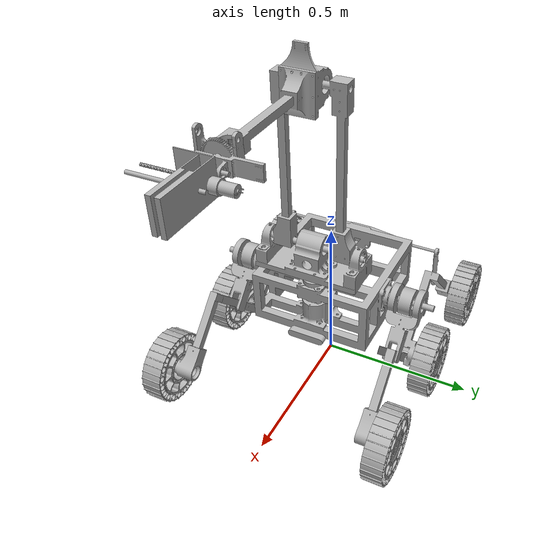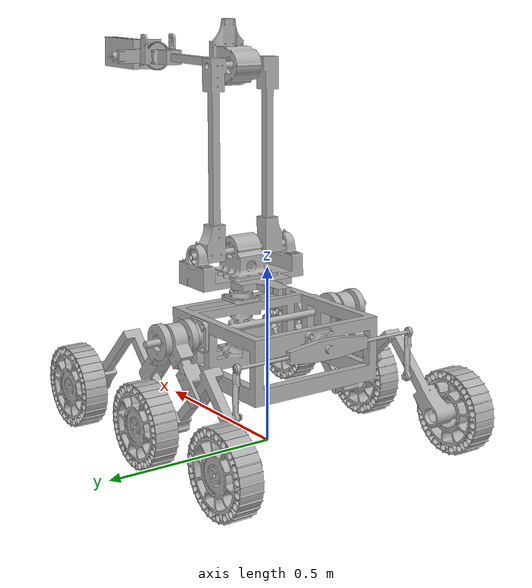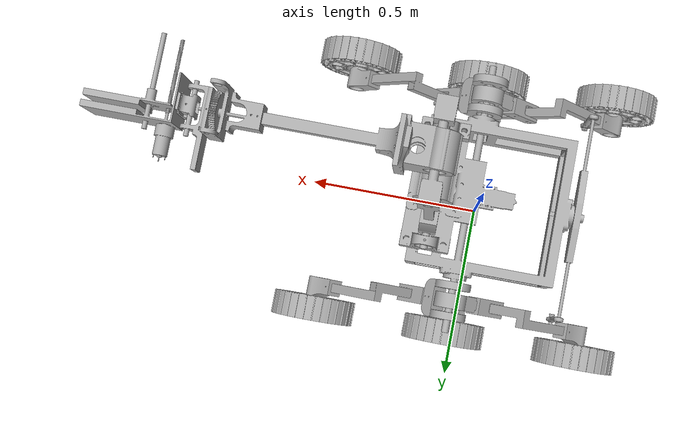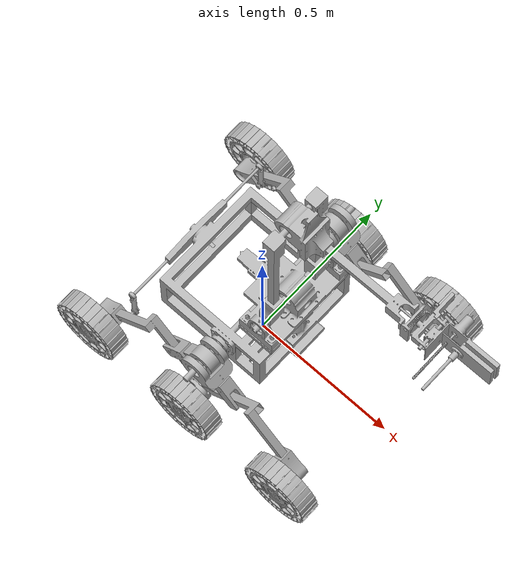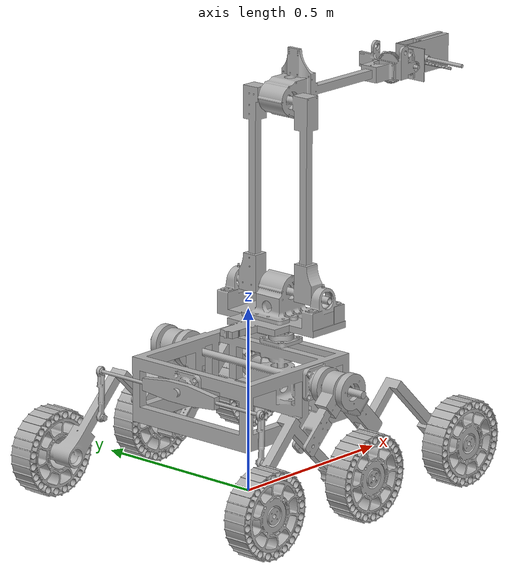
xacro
<?xml version="1.0"?>
<robot xmlns:xacro="http://www.ros.org/wiki/xacro" name="zine_rover">

    <!-- Import zine_rover urdf file -->
    <xacro:include filename="$(find zine_rover_description)/urdf/zine_rover.xacro" />

    <!-- Import control_xacro -->

</robot>

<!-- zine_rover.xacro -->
<robot name="zine_rover" xmlns:xacro="http://www.ros.org/wiki/xacro">

<xacro:include filename="$(find zine_rover_description)/urdf/materials.xacro" />
<xacro:include filename="$(find zine_rover_description)/urdf/zine_rover.trans" />
<xacro:include filename="$(find zine_rover_description)/urdf/zine_rover.gazebo" />
<xacro:include filename="$(find zine_rover_description)/urdf/zine_rover.ros2_control.xacro" />

<link name="base_link">
  <inertial>
    <origin xyz="-0.0038857611897501502 -0.00024786952072830364 0.2950448722837974" rpy="0 0 0"/>
    <mass value="10.0"/>
    <inertia ixx="1.011311" iyy="0.912421" izz="1.612186" ixy="0.000726" iyz="-0.0001" ixz="-0.009863"/>
  </inertial>
  <visual>
    <origin xyz="0 0 0" rpy="0 0 0"/>
    <geometry>
      <mesh filename="file://$(find zine_rover_description)/meshes/base_link.stl" scale="0.001 0.001 0.001"/>
    </geometry>
    <material name="silver"/>
  </visual>
  <collision>
    <origin xyz="0 0 0" rpy="0 0 0"/>
    <geometry>
      <mesh filename="file://$(find zine_rover_description)/meshes/base_link.stl" scale="0.001 0.001 0.001"/>
    </geometry>
  </collision>
</link>

<link name="r1_link_1">
  <inertial>
    <origin xyz="0.0006414189316887309 0.030758799699400874 1.3418884147076149e-05" rpy="0 0 0"/>
    <mass value="1.0"/>
    <inertia ixx="0.028773" iyy="0.052079" izz="0.028665" ixy="-2e-06" iyz="0.0" ixz="4.4e-05"/>
  </inertial>
  <visual>
    <origin xyz="-0.414869 0.407033 -0.118303" rpy="0 0 0"/>
    <geometry>
      <mesh filename="file://$(find zine_rover_description)/meshes/r1_link_1.stl" scale="0.001 0.001 0.001"/>
    </geometry>
    <material name="silver"/>
  </visual>
  <collision>
    <origin xyz="-0.414869 0.407033 -0.118303" rpy="0 0 0"/>
    <geometry>
      <mesh filename="file://$(find zine_rover_description)/meshes/r1_link_1.stl" scale="0.001 0.001 0.001"/>
    </geometry>
  </collision>
</link>

<link name="r2_link_1">
  <inertial>
    <origin xyz="-0.00021266516843905167 0.03075836165097673 -0.0006022299353100613" rpy="0 0 0"/>
    <mass value="1.0"/>
    <inertia ixx="0.028649" iyy="0.052079" izz="0.028789" ixy="8e-06" iyz="1e-06" ixz="5e-06"/>
  </inertial>
  <visual>
    <origin xyz="-0.029994 0.406322 -0.118471" rpy="0 0 0"/>
    <geometry>
      <mesh filename="file://$(find zine_rover_description)/meshes/r2_link_1.stl" scale="0.001 0.001 0.001"/>
    </geometry>
    <material name="silver"/>
  </visual>
  <collision>
    <origin xyz="-0.029994 0.406322 -0.118471" rpy="0 0 0"/>
    <geometry>
      <mesh filename="file://$(find zine_rover_description)/meshes/r2_link_1.stl" scale="0.001 0.001 0.001"/>
    </geometry>
  </collision>
</link>

<link name="r3_link_1">
  <inertial>
    <origin xyz="-0.0006185092064089348 0.030758925919536828 0.00017170579187054946" rpy="0 0 0"/>
    <mass value="1.0"/>
    <inertia ixx="0.028789" iyy="0.052079" izz="0.028649" ixy="2e-06" iyz="-1e-06" ixz="7e-06"/>
  </inertial>
  <visual>
    <origin xyz="0.354572 0.407444 -0.115238" rpy="0 0 0"/>
    <geometry>
      <mesh filename="file://$(find zine_rover_description)/meshes/r3_link_1.stl" scale="0.001 0.001 0.001"/>
    </geometry>
    <material name="silver"/>
  </visual>
  <collision>
    <origin xyz="0.354572 0.407444 -0.115238" rpy="0 0 0"/>
    <geometry>
      <mesh filename="file://$(find zine_rover_description)/meshes/r3_link_1.stl" scale="0.001 0.001 0.001"/>
    </geometry>
  </collision>
</link>

<link name="left_back_link_1">
  <inertial>
    <origin xyz="-0.04101897192135453 -0.08541263360069007 -0.03983040167490243" rpy="0 0 0"/>
    <mass value="0.5"/>
    <inertia ixx="0.006983" iyy="0.013288" izz="0.007314" ixy="7.7e-05" iyz="7.5e-05" ixz="-0.005479"/>
  </inertial>
  <visual>
    <origin xyz="-0.030181 -0.369196 -0.335368" rpy="0 0 0"/>
    <geometry>
      <mesh filename="file://$(find zine_rover_description)/meshes/left_back_link_1.stl" scale="0.001 0.001 0.001"/>
    </geometry>
    <material name="silver"/>
  </visual>
  <collision>
    <origin xyz="-0.030181 -0.369196 -0.335368" rpy="0 0 0"/>
    <geometry>
      <mesh filename="file://$(find zine_rover_description)/meshes/left_back_link_1.stl" scale="0.001 0.001 0.001"/>
    </geometry>
  </collision>
</link>

<link name="l3_link_1">
  <inertial>
    <origin xyz="-0.0005600223579425023 -0.03075840738942104 0.00031280724704187135" rpy="0 0 0"/>
    <mass value="1.0"/>
    <inertia ixx="0.028784" iyy="0.052079" izz="0.028654" ixy="-2e-06" iyz="1e-06" ixz="-2.6e-05"/>
  </inertial>
  <visual>
    <origin xyz="0.354011 -0.406164 -0.115072" rpy="0 0 0"/>
    <geometry>
      <mesh filename="file://$(find zine_rover_description)/meshes/l3_link_1.stl" scale="0.001 0.001 0.001"/>
    </geometry>
    <material name="silver"/>
  </visual>
  <collision>
    <origin xyz="0.354011 -0.406164 -0.115072" rpy="0 0 0"/>
    <geometry>
      <mesh filename="file://$(find zine_rover_description)/meshes/l3_link_1.stl" scale="0.001 0.001 0.001"/>
    </geometry>
  </collision>
</link>

<link name="l2_link_1">
  <inertial>
    <origin xyz="-0.0001583772114139119 -0.03075882547538339 -0.0006195546615022363" rpy="0 0 0"/>
    <mass value="1.0"/>
    <inertia ixx="0.028649" iyy="0.052079" izz="0.028789" ixy="-8e-06" iyz="-2e-06" ixz="-8e-06"/>
  </inertial>
  <visual>
    <origin xyz="-0.030562 -0.405043 -0.117281" rpy="0 0 0"/>
    <geometry>
      <mesh filename="file://$(find zine_rover_description)/meshes/l2_link_1.stl" scale="0.001 0.001 0.001"/>
    </geometry>
    <material name="silver"/>
  </visual>
  <collision>
    <origin xyz="-0.030562 -0.405043 -0.117281" rpy="0 0 0"/>
    <geometry>
      <mesh filename="file://$(find zine_rover_description)/meshes/l2_link_1.stl" scale="0.001 0.001 0.001"/>
    </geometry>
  </collision>
</link>

<link name="l1_link_1">
  <inertial>
    <origin xyz="0.00019781416745967562 -0.030758307389101902 0.0006106918381962728" rpy="0 0 0"/>
    <mass value="1.0"/>
    <inertia ixx="0.028649" iyy="0.052079" izz="0.028789" ixy="1e-06" iyz="2e-06" ixz="-1e-06"/>
  </inertial>
  <visual>
    <origin xyz="-0.415171 -0.406101 -0.119878" rpy="0 0 0"/>
    <geometry>
      <mesh filename="file://$(find zine_rover_description)/meshes/l1_link_1.stl" scale="0.001 0.001 0.001"/>
    </geometry>
    <material name="silver"/>
  </visual>
  <collision>
    <origin xyz="-0.415171 -0.406101 -0.119878" rpy="0 0 0"/>
    <geometry>
      <mesh filename="file://$(find zine_rover_description)/meshes/l1_link_1.stl" scale="0.001 0.001 0.001"/>
    </geometry>
  </collision>
</link>

<link name="limb2_1">
  <inertial>
    <origin xyz="-0.0009313149936534676 0.15764720202589638 0.24654532876751079" rpy="0 0 0"/>
    <mass value="1.0"/>
    <inertia ixx="0.475806" iyy="0.397211" izz="0.080891" ixy="-2e-06" iyz="0.002402" ixz="-0.000211"/>
  </inertial>
  <visual>
    <origin xyz="-0.125123 0.157314 -0.525964" rpy="0 0 0"/>
    <geometry>
      <mesh filename="file://$(find zine_rover_description)/meshes/limb2_1.stl" scale="0.001 0.001 0.001"/>
    </geometry>
    <material name="silver"/>
  </visual>
  <collision>
    <origin xyz="-0.125123 0.157314 -0.525964" rpy="0 0 0"/>
    <geometry>
      <mesh filename="file://$(find zine_rover_description)/meshes/limb2_1.stl" scale="0.001 0.001 0.001"/>
    </geometry>
  </collision>
</link>

<link name="limb3_1">
  <inertial>
    <origin xyz="0.09312766839979052 -0.014585693873940037 0.0035642598524185942" rpy="0 0 0"/>
    <mass value="1.14"/>
    <inertia ixx="0.011716" iyy="0.090775" izz="0.087272" ixy="-5.6e-05" iyz="-4.6e-05" ixz="0.000558"/>
  </inertial>
  <visual>
    <origin xyz="-0.124287 -0.015263 -1.040309" rpy="0 0 0"/>
    <geometry>
      <mesh filename="file://$(find zine_rover_description)/meshes/limb3_1.stl" scale="0.001 0.001 0.001"/>
    </geometry>
    <material name="silver"/>
  </visual>
  <collision>
    <origin xyz="-0.124287 -0.015263 -1.040309" rpy="0 0 0"/>
    <geometry>
      <mesh filename="file://$(find zine_rover_description)/meshes/limb3_1.stl" scale="0.001 0.001 0.001"/>
    </geometry>
  </collision>
</link>

<link name="limb4_1">
  <inertial>
    <origin xyz="-0.03237236969252921 0.014485063687909881 -0.003759164528091219" rpy="0 0 0"/>
    <mass value="0.52"/>
    <inertia ixx="0.003369" iyy="0.001" izz="0.003487" ixy="-0.000232" iyz="4e-05" ixz="6.6e-05"/>
  </inertial>
  <visual>
    <origin xyz="-0.609567 -0.004405 -1.047976" rpy="0 0 0"/>
    <geometry>
      <mesh filename="file://$(find zine_rover_description)/meshes/limb4_1.stl" scale="0.001 0.001 0.001"/>
    </geometry>
    <material name="silver"/>
  </visual>
  <collision>
    <origin xyz="-0.609567 -0.004405 -1.047976" rpy="0 0 0"/>
    <geometry>
      <mesh filename="file://$(find zine_rover_description)/meshes/limb4_1.stl" scale="0.001 0.001 0.001"/>
    </geometry>
  </collision>
</link>

<link name="limb5_1">
  <inertial>
    <origin xyz="0.09198943112043745 0.025925778982402593 -0.0051279907227419486" rpy="0 0 0"/>
    <mass value="0.5"/>
    <inertia ixx="0.000546" iyy="0.001224" izz="0.001484" ixy="-0.000139" iyz="9e-06" ixz="-3.3e-05"/>
  </inertial>
  <visual>
    <origin xyz="-0.613532 -0.006119 -1.047254" rpy="0 0 0"/>
    <geometry>
      <mesh filename="file://$(find zine_rover_description)/meshes/limb5_1.stl" scale="0.001 0.001 0.001"/>
    </geometry>
    <material name="silver"/>
  </visual>
  <collision>
    <origin xyz="-0.613532 -0.006119 -1.047254" rpy="0 0 0"/>
    <geometry>
      <mesh filename="file://$(find zine_rover_description)/meshes/limb5_1.stl" scale="0.001 0.001 0.001"/>
    </geometry>
  </collision>
</link>

<link name="limb6_1">
  <inertial>
    <origin xyz="0.05423722048055246 0.1486038100062132 -0.004461452158523782" rpy="0 0 0"/>
    <mass value="0.2"/>
    <inertia ixx="0.0008" iyy="0.002757" izz="0.002011" ixy="-7.7e-05" iyz="7e-06" ixz="-1.2e-05"/>
  </inertial>
  <visual>
    <origin xyz="-0.696447 0.131588 -1.048382" rpy="0 0 0"/>
    <geometry>
      <mesh filename="file://$(find zine_rover_description)/meshes/limb6_1.stl" scale="0.001 0.001 0.001"/>
    </geometry>
    <material name="silver"/>
  </visual>
  <collision>
    <origin xyz="-0.696447 0.131588 -1.048382" rpy="0 0 0"/>
    <geometry>
      <mesh filename="file://$(find zine_rover_description)/meshes/limb6_1.stl" scale="0.001 0.001 0.001"/>
    </geometry>
  </collision>
</link>

<link name="diff_bar_1">
  <inertial>
    <origin xyz="-0.008424732499142051 -0.0023382285573709713 -0.0024749991835331664" rpy="0 0 0"/>
    <mass value="1.1"/>
    <inertia ixx="0.015332" iyy="0.00048" izz="0.015193" ixy="-6e-06" iyz="1.1e-05" ixz="-7e-06"/>
  </inertial>
  <visual>
    <origin xyz="0.2551 4.5e-05 -0.335686" rpy="0 0 0"/>
    <geometry>
      <mesh filename="file://$(find zine_rover_description)/meshes/diff_bar_1.stl" scale="0.001 0.001 0.001"/>
    </geometry>
    <material name="silver"/>
  </visual>
  <collision>
    <origin xyz="0.2551 4.5e-05 -0.335686" rpy="0 0 0"/>
    <geometry>
      <mesh filename="file://$(find zine_rover_description)/meshes/diff_bar_1.stl" scale="0.001 0.001 0.001"/>
    </geometry>
  </collision>
</link>

<link name="r_ball_bar_1">
  <inertial>
    <origin xyz="-3.8041425093338077e-07 0.006999843409000339 -5.8550370919396855e-06" rpy="0 0 0"/>
    <mass value="0.017010723360162443"/>
    <inertia ixx="1e-06" iyy="1e-06" izz="1e-06" ixy="-0.0" iyz="-0.0" ixz="0.0"/>
  </inertial>
  <visual>
    <origin xyz="0.265785 0.28801 -0.333291" rpy="0 0 0"/>
    <geometry>
      <mesh filename="file://$(find zine_rover_description)/meshes/r_ball_bar_1.stl" scale="0.001 0.001 0.001"/>
    </geometry>
    <material name="silver"/>
  </visual>
  <collision>
    <origin xyz="0.265785 0.28801 -0.333291" rpy="0 0 0"/>
    <geometry>
      <mesh filename="file://$(find zine_rover_description)/meshes/r_ball_bar_1.stl" scale="0.001 0.001 0.001"/>
    </geometry>
  </collision>
</link>

<link name="l_ball_bar_1">
  <inertial>
    <origin xyz="-4.893178806586462e-08 -0.007000347061398793 5.702947977637152e-06" rpy="0 0 0"/>
    <mass value="0.017010723360162464"/>
    <inertia ixx="1e-06" iyy="1e-06" izz="1e-06" ixy="-0.0" iyz="-0.0" ixz="0.0"/>
  </inertial>
  <visual>
    <origin xyz="0.265811 -0.286654 -0.332818" rpy="0 0 0"/>
    <geometry>
      <mesh filename="file://$(find zine_rover_description)/meshes/l_ball_bar_1.stl" scale="0.001 0.001 0.001"/>
    </geometry>
    <material name="silver"/>
  </visual>
  <collision>
    <origin xyz="0.265811 -0.286654 -0.332818" rpy="0 0 0"/>
    <geometry>
      <mesh filename="file://$(find zine_rover_description)/meshes/l_ball_bar_1.stl" scale="0.001 0.001 0.001"/>
    </geometry>
  </collision>
</link>

<link name="l_diff_hand_1">
  <inertial>
    <origin xyz="0.00282756213214691 0.001357765747342421 -0.05772275325720411" rpy="0 0 0"/>
    <mass value="0.16009834530837108"/>
    <inertia ixx="0.000253" iyy="0.000256" izz="8e-06" ixy="-0.0" iyz="6e-06" ixz="5e-06"/>
  </inertial>
  <visual>
    <origin xyz="0.265811 -0.279654 -0.332824" rpy="0 0 0"/>
    <geometry>
      <mesh filename="file://$(find zine_rover_description)/meshes/l_diff_hand_1.stl" scale="0.001 0.001 0.001"/>
    </geometry>
    <material name="silver"/>
  </visual>
  <collision>
    <origin xyz="0.265811 -0.279654 -0.332824" rpy="0 0 0"/>
    <geometry>
      <mesh filename="file://$(find zine_rover_description)/meshes/l_diff_hand_1.stl" scale="0.001 0.001 0.001"/>
    </geometry>
  </collision>
</link>

<link name="r_diff_hand_1">
  <inertial>
    <origin xyz="0.0024539326093456215 1.7808395375018549e-06 -0.057756889781488685" rpy="0 0 0"/>
    <mass value="0.16009838500140464"/>
    <inertia ixx="0.000253" iyy="0.000256" izz="8e-06" ixy="-0.0" iyz="0.0" ixz="3e-06"/>
  </inertial>
  <visual>
    <origin xyz="0.265785 0.28101 -0.333285" rpy="0 0 0"/>
    <geometry>
      <mesh filename="file://$(find zine_rover_description)/meshes/r_diff_hand_1.stl" scale="0.001 0.001 0.001"/>
    </geometry>
    <material name="silver"/>
  </visual>
  <collision>
    <origin xyz="0.265785 0.28101 -0.333285" rpy="0 0 0"/>
    <geometry>
      <mesh filename="file://$(find zine_rover_description)/meshes/r_diff_hand_1.stl" scale="0.001 0.001 0.001"/>
    </geometry>
  </collision>
</link>

<link name="l_ball_leg_1">
  <inertial>
    <origin xyz="-2.423484034008716e-07 4.322868535355795e-07 2.809097552070039e-07" rpy="0 0 0"/>
    <mass value="0.017010723360162443"/>
    <inertia ixx="1e-06" iyy="1e-06" izz="1e-06" ixy="-0.0" iyz="-0.0" ixz="0.0"/>
  </inertial>
  <visual>
    <origin xyz="0.262757 -0.282663 -0.204979" rpy="0 0 0"/>
    <geometry>
      <mesh filename="file://$(find zine_rover_description)/meshes/l_ball_leg_1.stl" scale="0.001 0.001 0.001"/>
    </geometry>
    <material name="silver"/>
  </visual>
  <collision>
    <origin xyz="0.262757 -0.282663 -0.204979" rpy="0 0 0"/>
    <geometry>
      <mesh filename="file://$(find zine_rover_description)/meshes/l_ball_leg_1.stl" scale="0.001 0.001 0.001"/>
    </geometry>
  </collision>
</link>

<link name="r_ball_leg_1">
  <inertial>
    <origin xyz="-3.255745827934753e-07 1.935362867744317e-07 2.295955819631157e-07" rpy="0 0 0"/>
    <mass value="0.017010723360162464"/>
    <inertia ixx="1e-06" iyy="1e-06" izz="1e-06" ixy="0.0" iyz="0.0" ixz="0.0"/>
  </inertial>
  <visual>
    <origin xyz="0.263558 0.281006 -0.205388" rpy="0 0 0"/>
    <geometry>
      <mesh filename="file://$(find zine_rover_description)/meshes/r_ball_leg_1.stl" scale="0.001 0.001 0.001"/>
    </geometry>
    <material name="silver"/>
  </visual>
  <collision>
    <origin xyz="0.263558 0.281006 -0.205388" rpy="0 0 0"/>
    <geometry>
      <mesh filename="file://$(find zine_rover_description)/meshes/r_ball_leg_1.stl" scale="0.001 0.001 0.001"/>
    </geometry>
  </collision>
</link>

<link name="right_back_link_1">
  <inertial>
    <origin xyz="-0.04128928098544271 0.08541503378206888 -0.03955012324086804" rpy="0 0 0"/>
    <mass value="3.0"/>
    <inertia ixx="0.006908" iyy="0.013288" izz="0.007389" ixy="-7.8e-05" iyz="-7.4e-05" ixz="-0.005477"/>
  </inertial>
  <visual>
    <origin xyz="-0.030181 0.370084 -0.335368" rpy="0 0 0"/>
    <geometry>
      <mesh filename="file://$(find zine_rover_description)/meshes/right_back_link_1.stl" scale="0.001 0.001 0.001"/>
    </geometry>
    <material name="silver"/>
  </visual>
  <collision>
    <origin xyz="-0.030181 0.370084 -0.335368" rpy="0 0 0"/>
    <geometry>
      <mesh filename="file://$(find zine_rover_description)/meshes/right_back_link_1.stl" scale="0.001 0.001 0.001"/>
    </geometry>
  </collision>
</link>

<link name="right_front_link_1">
  <inertial>
    <origin xyz="0.036348723198041874 0.08574580577310559 -0.03808847939829246" rpy="0 0 0"/>
    <mass value="0.5"/>
    <inertia ixx="0.012482" iyy="0.015651" izz="0.011906" ixy="5.9e-05" iyz="-6.2e-05" ixz="0.006108"/>
  </inertial>
  <visual>
    <origin xyz="-0.030181 0.370084 -0.335368" rpy="0 0 0"/>
    <geometry>
      <mesh filename="file://$(find zine_rover_description)/meshes/right_front_link_1.stl" scale="0.001 0.001 0.001"/>
    </geometry>
    <material name="silver"/>
  </visual>
  <collision>
    <origin xyz="-0.030181 0.370084 -0.335368" rpy="0 0 0"/>
    <geometry>
      <mesh filename="file://$(find zine_rover_description)/meshes/right_front_link_1.stl" scale="0.001 0.001 0.001"/>
    </geometry>
  </collision>
</link>

<link name="left_front_link_1">
  <inertial>
    <origin xyz="0.03624056599335032 -0.08574592403164472 -0.038191405202450346" rpy="0 0 0"/>
    <mass value="0.5"/>
    <inertia ixx="0.012516" iyy="0.015651" izz="0.011871" ixy="-5.9e-05" iyz="6.2e-05" ixz="0.006106"/>
  </inertial>
  <visual>
    <origin xyz="-0.030181 -0.369196 -0.335368" rpy="0 0 0"/>
    <geometry>
      <mesh filename="file://$(find zine_rover_description)/meshes/left_front_link_1.stl" scale="0.001 0.001 0.001"/>
    </geometry>
    <material name="silver"/>
  </visual>
  <collision>
    <origin xyz="-0.030181 -0.369196 -0.335368" rpy="0 0 0"/>
    <geometry>
      <mesh filename="file://$(find zine_rover_description)/meshes/left_front_link_1.stl" scale="0.001 0.001 0.001"/>
    </geometry>
  </collision>
</link>

<link name="right_leg2_link_1">
  <inertial>
    <origin xyz="-0.10477256996150404 -0.020099344589046608 -0.05865491905650194" rpy="0 0 0"/>
    <mass value="3.0"/>
    <inertia ixx="0.017082" iyy="0.106334" izz="0.096519" ixy="-0.00164" iyz="-0.001772" ixz="0.004308"/>
  </inertial>
  <visual>
    <origin xyz="0.095844 0.298444 -0.214641" rpy="0 0 0"/>
    <geometry>
      <mesh filename="file://$(find zine_rover_description)/meshes/right_leg2_link_1.stl" scale="0.001 0.001 0.001"/>
    </geometry>
    <material name="silver"/>
  </visual>
  <collision>
    <origin xyz="0.095844 0.298444 -0.214641" rpy="0 0 0"/>
    <geometry>
      <mesh filename="file://$(find zine_rover_description)/meshes/right_leg2_link_1.stl" scale="0.001 0.001 0.001"/>
    </geometry>
  </collision>
</link>

<link name="right_leg1_link_1">
  <inertial>
    <origin xyz="0.16217649706871057 -0.015281462818579283 -0.043322366966446285" rpy="0 0 0"/>
    <mass value="3.0"/>
    <inertia ixx="0.014033" iyy="0.060191" izz="0.050972" ixy="0.006183" iyz="-0.001004" ixz="0.003663"/>
  </inertial>
  <visual>
    <origin xyz="-0.149094 0.29799 -0.210689" rpy="0 0 0"/>
    <geometry>
      <mesh filename="file://$(find zine_rover_description)/meshes/right_leg1_link_1.stl" scale="0.001 0.001 0.001"/>
    </geometry>
    <material name="silver"/>
  </visual>
  <collision>
    <origin xyz="-0.149094 0.29799 -0.210689" rpy="0 0 0"/>
    <geometry>
      <mesh filename="file://$(find zine_rover_description)/meshes/right_leg1_link_1.stl" scale="0.001 0.001 0.001"/>
    </geometry>
  </collision>
</link>

<link name="left_leg1_link_1">
  <inertial>
    <origin xyz="0.16248836174838263 0.04268507341206884 -0.04215896089783708" rpy="0 0 0"/>
    <mass value="3.0"/>
    <inertia ixx="0.013984" iyy="0.060193" izz="0.051025" ixy="-0.006191" iyz="0.00096" ixz="0.003398"/>
  </inertial>
  <visual>
    <origin xyz="-0.14874 -0.269701 -0.210353" rpy="0 0 0"/>
    <geometry>
      <mesh filename="file://$(find zine_rover_description)/meshes/left_leg1_link_1.stl" scale="0.001 0.001 0.001"/>
    </geometry>
    <material name="silver"/>
  </visual>
  <collision>
    <origin xyz="-0.14874 -0.269701 -0.210353" rpy="0 0 0"/>
    <geometry>
      <mesh filename="file://$(find zine_rover_description)/meshes/left_leg1_link_1.stl" scale="0.001 0.001 0.001"/>
    </geometry>
  </collision>
</link>

<link name="left_leg2_link_1">
  <inertial>
    <origin xyz="-0.10492310393726255 0.047098178739375884 -0.05837546321874501" rpy="0 0 0"/>
    <mass value="3.0"/>
    <inertia ixx="0.017105" iyy="0.106331" izz="0.096492" ixy="0.001643" iyz="0.001768" ixz="0.00452"/>
  </inertial>
  <visual>
    <origin xyz="0.095019 -0.270164 -0.213786" rpy="0 0 0"/>
    <geometry>
      <mesh filename="file://$(find zine_rover_description)/meshes/left_leg2_link_1.stl" scale="0.001 0.001 0.001"/>
    </geometry>
    <material name="silver"/>
  </visual>
  <collision>
    <origin xyz="0.095019 -0.270164 -0.213786" rpy="0 0 0"/>
    <geometry>
      <mesh filename="file://$(find zine_rover_description)/meshes/left_leg2_link_1.stl" scale="0.001 0.001 0.001"/>
    </geometry>
  </collision>
</link>

<link name="limb1_1">
  <inertial>
    <origin xyz="-0.016370903333090006 -0.0008645449700613833 0.033727080142810006" rpy="0 0 0"/>
    <mass value="1.0"/>
    <inertia ixx="0.161528" iyy="0.058708" izz="0.190376" ixy="6.8e-05" iyz="-0.000181" ixz="-0.004124"/>
  </inertial>
  <visual>
    <origin xyz="-0.127661 -0.0 -0.433766" rpy="0 0 0"/>
    <geometry>
      <mesh filename="file://$(find zine_rover_description)/meshes/limb1_1.stl" scale="0.001 0.001 0.001"/>
    </geometry>
    <material name="silver"/>
  </visual>
  <collision>
    <origin xyz="-0.127661 -0.0 -0.433766" rpy="0 0 0"/>
    <geometry>
      <mesh filename="file://$(find zine_rover_description)/meshes/limb1_1.stl" scale="0.001 0.001 0.001"/>
    </geometry>
  </collision>
</link>

<link name="camera_bottom_screw_frame">
  <inertial>
    <origin xyz="0.012499766770417559 1.707797670641442e-12 -6.742476155841004e-06" rpy="0 0 0"/>
    <mass value="0.5881456227875071"/>
    <inertia ixx="0.000738" iyy="6e-05" izz="0.000739" ixy="-0.0" iyz="-0.0" ixz="0.0"/>
  </inertial>
  <visual>
    <origin xyz="-0.170543 -0.0 -0.20437" rpy="0 0 0"/>
    <geometry>
      <mesh filename="file://$(find zine_rover_description)/meshes/camera_link_1.stl" scale="0.001 0.001 0.001"/>
    </geometry>
    <material name="silver"/>
  </visual>
  <collision>
    <origin xyz="-0.170543 -0.0 -0.20437" rpy="0 0 0"/>
    <geometry>
      <mesh filename="file://$(find zine_rover_description)/meshes/camera_link_1.stl" scale="0.001 0.001 0.001"/>
    </geometry>
  </collision>
</link>

<link name="camera_link"></link>

<link name="camera_depth_frame"></link>

<link name="camera_depth_optical_frame"></link>

<link name="camera_color_frame"></link>

<link name="camera_color_optical_frame"></link>

<link name="camera_left_ir_frame"></link>

<link name="camera_left_ir_optical_frame"></link>

<link name="camera_right_ir_frame"></link>

<link name="camera_right_ir_optical_frame"></link>

<joint name="r_wheel1_j" type="continuous">
  <origin xyz="0.265775 -0.109043 -0.092386" rpy="0 0 0"/>
  <parent link="right_leg1_link_1"/>
  <child link="r1_link_1"/>
  <axis xyz="0.0 1.0 0.0"/>
</joint>

<joint name="r_wheel2_j" type="continuous">
  <origin xyz="0.125838 -0.107878 -0.09617" rpy="0 0 0"/>
  <parent link="right_leg2_link_1"/>
  <child link="r2_link_1"/>
  <axis xyz="0.000315 1.0 -1.2e-05"/>
</joint>

<joint name="r_wheel3_j" type="continuous">
  <origin xyz="-0.258728 -0.109 -0.099403" rpy="0 0 0"/>
  <parent link="right_leg2_link_1"/>
  <child link="r3_link_1"/>
  <axis xyz="0.0 1.0 -0.0"/>
</joint>

<joint name="l_back_j" type="continuous">
  <origin xyz="0.030181 0.369196 0.335368" rpy="0 0 0"/>
  <parent link="base_link"/>
  <child link="left_back_link_1"/>
  <axis xyz="0.0 1.0 -0.0"/>
</joint>

<joint name="l_wheel3_j" type="continuous">
  <origin xyz="-0.258992 0.136 -0.098714" rpy="0 0 0"/>
  <parent link="left_leg2_link_1"/>
  <child link="l3_link_1"/>
  <axis xyz="-0.0 1.0 0.0"/>
</joint>

<joint name="l_wheel2_j" type="continuous">
  <origin xyz="0.125581 0.134879 -0.096505" rpy="0 0 0"/>
  <parent link="left_leg2_link_1"/>
  <child link="l2_link_1"/>
  <axis xyz="-0.000315 1.0 1.3e-05"/>
</joint>

<joint name="l_wheel1_j" type="continuous">
  <origin xyz="0.266431 0.1364 -0.090475" rpy="0 0 0"/>
  <parent link="left_leg1_link_1"/>
  <child link="l1_link_1"/>
  <axis xyz="-0.0 1.0 -0.0"/>
</joint>

<joint name="camera_j" type="fixed">
  <origin xyz="0.170543 0.0 0.20437" rpy="0 0 0"/>
  <parent link="base_link"/>
  <child link="camera_bottom_screw_frame"/>
</joint>

<joint name="camera_link_joint" type="fixed">
  <parent link="camera_bottom_screw_frame" />
  <child link="camera_link" />
  <origin xyz="0 0.0175 0.0125 " rpy="0 0 0" />
</joint>

<joint name="camera_depth_joint" type="fixed">
  <parent link="camera_link" />
  <child link="camera_depth_frame" />
  <origin xyz="0 0 0" rpy="0 0 0" />
</joint>

<joint name="camera_depth_optical_joint" type="fixed">
  <parent link="camera_depth_frame" />
  <child link="camera_depth_optical_frame" />
  <origin xyz="0 0 0 " rpy="-1.57 0 -1.57" />
</joint>

<joint name="camera_color_joint" type="fixed">
  <parent link="camera_depth_frame" />
  <child link="camera_color_frame" />
  <origin xyz="0 0 0" rpy="0 0 0" />
</joint>

<joint name="camera_color_optical_joint" type="fixed">
  <parent link="camera_color_frame" />
  <child link="camera_color_optical_frame" />
  <origin xyz="0 0 0 " rpy="-1.57 0 -1.57" />
</joint>

<joint name="camera_left_ir_joint" type="fixed">
  <parent link="camera_depth_frame" />
  <child link="camera_left_ir_frame" />
  <origin xyz="0 0 0 " rpy="0 0 0 " />
</joint>

<joint name="camera_left_ir_optical_joint" type="fixed">
  <parent link="camera_left_ir_frame" />
  <child link="camera_left_ir_optical_frame" />
  <origin xyz="0 0 0 " rpy="-1.57 0 -1.57" />
</joint>

<joint name="camera_right_ir_joint" type="fixed">
  <parent link="camera_depth_frame" />
  <child link="camera_right_ir_frame" />
  <origin xyz="0 -0.050 0 " rpy="0 0 0" />
</joint>

<joint name="camera_right_ir_optical_joint" type="fixed">
  <parent link="camera_right_ir_frame" />
  <child link="camera_right_ir_optical_frame" />
  <origin xyz="0 0 0 " rpy="-1.57 0 -1.57" />
</joint>

<joint name="joint1" type="revolute">
  <origin xyz="-0.002538 -0.157314 0.092198" rpy="0 0 0"/>
  <parent link="limb1_1"/>
  <child link="limb2_1"/>
  <axis xyz="0.0 -1.0 0.0"/>
  <limit upper="1.57" lower="-1.57" effort="100" velocity="100"/>
</joint>

<joint name="joint2" type="revolute">
  <origin xyz="-0.000836 0.172577 0.514345" rpy="0 0 0"/>
  <parent link="limb2_1"/>
  <child link="limb3_1"/>
  <axis xyz="0.0 -1.0 0.0"/>
  <limit upper="1.570796" lower="-1.570796" effort="100" velocity="100"/>
</joint>

<joint name="joint3" type="revolute">
  <origin xyz="0.48528 -0.010858 0.007667" rpy="0 0 0"/>
  <parent link="limb3_1"/>
  <child link="limb4_1"/>
  <axis xyz="0.999954 0.0 0.009613"/>
  <limit upper="1.570796" lower="-1.570796" effort="100" velocity="100"/>
</joint>

<joint name="joint4" type="revolute">
  <origin xyz="0.003965 0.001714 -0.000722" rpy="0 0 0"/>
  <parent link="limb4_1"/>
  <child link="limb5_1"/>
  <axis xyz="-9.7e-05 0.999949 0.010126"/>
  <limit upper="1.570796" lower="-1.570796" effort="100" velocity="100"/>
</joint>

<joint name="joint5" type="prismatic">
  <origin xyz="0.082915 -0.137707 0.001128" rpy="0 0 0"/>
  <parent link="limb5_1"/>
  <child link="limb6_1"/>
  <axis xyz="9.7e-05 -0.999949 -0.010126"/>
  <limit upper="0.1" lower="0.0" effort="100" velocity="100"/>
</joint>

<joint name="diff_bar_j" type="revolute">
  <origin xyz="-0.2551 -4.5e-05 0.335686" rpy="0 0 0"/>
  <parent link="base_link"/>
  <child link="diff_bar_1"/>
  <axis xyz="-1.0 0.0 0.0"/>
  <limit upper="1.0" lower="-1.0" effort="10" velocity="100"/>
</joint>

<joint name="r_bar_ball_j" type="continuous">
  <origin xyz="-0.010685 -0.287965 -0.002395" rpy="0 0 0"/>
  <parent link="diff_bar_1"/>
  <child link="r_ball_bar_1"/>
  <axis xyz="4.5e-05 -1.0 0.000823"/>
</joint>

<joint name="l_bar_ball_j" type="continuous">
  <origin xyz="-0.010711 0.286699 -0.002868" rpy="0 0 0"/>
  <parent link="diff_bar_1"/>
  <child link="l_ball_bar_1"/>
  <axis xyz="-4.5e-05 1.0 -0.000823"/>
</joint>

<joint name="l_ball_hand_j" type="continuous">
  <origin xyz="0.0 -0.007 6e-06" rpy="0 0 0"/>
  <parent link="l_ball_bar_1"/>
  <child link="l_diff_hand_1"/>
  <axis xyz="0.999698 1.2e-05 -0.024563"/>
</joint>

<joint name="r_ball_hand_j" type="continuous">
  <origin xyz="0.0 0.007 -6e-06" rpy="0 0 0"/>
  <parent link="r_ball_bar_1"/>
  <child link="r_diff_hand_1"/>
  <axis xyz="0.999519 -1.2e-05 -0.031019"/>
</joint>

<joint name="l_hand_ball_j" type="continuous">
  <origin xyz="0.003054 0.003009 -0.127845" rpy="0 0 0"/>
  <parent link="l_diff_hand_1"/>
  <child link="l_ball_leg_1"/>
  <axis xyz="0.999698 1.2e-05 -0.024563"/>
</joint>

<joint name="r_hand_ball_j" type="continuous">
  <origin xyz="0.002227 4e-06 -0.127897" rpy="0 0 0"/>
  <parent link="r_diff_hand_1"/>
  <child link="r_ball_leg_1"/>
  <axis xyz="0.999519 -1.2e-05 -0.031019"/>
</joint>

<joint name="r_back_j" type="continuous">
  <origin xyz="0.030181 -0.370084 0.335368" rpy="0 0 0"/>
  <parent link="base_link"/>
  <child link="right_back_link_1"/>
  <axis xyz="-0.0 -1.0 0.0"/>
</joint>

<joint name="r_front_j" type="continuous">
  <origin xyz="0.030181 -0.370084 0.335368" rpy="0 0 0"/>
  <parent link="base_link"/>
  <child link="right_front_link_1"/>
  <axis xyz="-0.0 -1.0 0.0"/>
</joint>

<joint name="l_front_j" type="continuous">
  <origin xyz="0.030181 0.369196 0.335368" rpy="0 0 0"/>
  <parent link="base_link"/>
  <child link="left_front_link_1"/>
  <axis xyz="0.0 1.0 -0.0"/>
</joint>

<joint name="r_leg2_j" type="continuous">
  <origin xyz="-0.126025 0.07164 -0.120727" rpy="0 0 0"/>
  <parent link="right_back_link_1"/>
  <child link="right_leg2_link_1"/>
  <axis xyz="0.0 1.0 -0.0"/>
</joint>

<joint name="r_leg1_j" type="continuous">
  <origin xyz="0.118913 0.072094 -0.124679" rpy="0 0 0"/>
  <parent link="right_front_link_1"/>
  <child link="right_leg1_link_1"/>
  <axis xyz="0.0 1.0 0.0"/>
</joint>

<joint name="l_leg1_j" type="continuous">
  <origin xyz="0.118559 -0.099495 -0.125015" rpy="0 0 0"/>
  <parent link="left_front_link_1"/>
  <child link="left_leg1_link_1"/>
  <axis xyz="0.0 1.0 -0.0"/>
</joint>

<joint name="l_leg2_j" type="continuous">
  <origin xyz="-0.1252 -0.099032 -0.121582" rpy="0 0 0"/>
  <parent link="left_back_link_1"/>
  <child link="left_leg2_link_1"/>
  <axis xyz="-0.0 1.0 0.0"/>
</joint>

<joint name="joint_0" type="revolute">
  <origin xyz="0.127661 0.0 0.433766" rpy="0 0 0"/>
  <parent link="base_link"/>
  <child link="limb1_1"/>
  <axis xyz="0.0 0.0 1.0"/>
  <limit upper="1.57" lower="-1.57" effort="100" velocity="100"/>
</joint>

</robot>

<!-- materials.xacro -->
<robot name="zine_rover" xmlns:xacro="http://www.ros.org/wiki/xacro" >

<material name="silver">
  <color rgba="0.700 0.700 0.700 1.000"/>
</material>

</robot>

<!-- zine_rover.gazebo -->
<robot name="zine_rover" xmlns:xacro="http://www.ros.org/wiki/xacro" >

<xacro:property name="body_color" value="Gazebo/White" />
<xacro:property name="wheel_color" value="Gazebo/Blue" />

<gazebo reference="base_link">
  <material>Gazebo/White</material>
  <mu1>0.2</mu1>
  <mu2>0.2</mu2>
  <self_collide>true</self_collide>
  <gravity>true</gravity>
</gazebo>

<gazebo reference="r1_link_1">
  <material>${wheel_color}</material>
  <mu1>10.0</mu1>
  <mu2>10.0</mu2>
  <self_collide>true</self_collide>
</gazebo>

<gazebo reference="r2_link_1">
  <material>${wheel_color}</material>
  <mu1>10.0</mu1>
  <mu2>10.0</mu2>
  <self_collide>true</self_collide>
</gazebo>

<gazebo reference="r3_link_1">
  <material>${wheel_color}</material>
  <mu1>10.0</mu1>
  <mu2>10.0</mu2>
  <self_collide>true</self_collide>
</gazebo>

<gazebo reference="left_back_link_1">
  <material>${body_color}</material>
  <mu1>0.2</mu1>
  <mu2>0.2</mu2>
  <self_collide>true</self_collide>
</gazebo>

<gazebo reference="l3_link_1">
  <material>${wheel_color}</material>
  <mu1>10.0</mu1>
  <mu2>10.0</mu2>
  <self_collide>true</self_collide>
</gazebo>

<gazebo reference="l2_link_1">
  <material>${wheel_color}</material>
  <mu1>10.0</mu1>
  <mu2>10.0</mu2>
  <self_collide>true</self_collide>
</gazebo>

<gazebo reference="l1_link_1">
  <material>${wheel_color}</material>
  <mu1>10.0</mu1>
  <mu2>10.0</mu2>
  <self_collide>true</self_collide>
</gazebo>

<gazebo reference="camera_link_1">
  <material>${body_color}</material>
  <mu1>0.2</mu1>
  <mu2>0.2</mu2>
  <self_collide>true</self_collide>
</gazebo>

<gazebo reference="limb2_1">
  <material>${body_color}</material>
  <mu1>0.2</mu1>
  <mu2>0.2</mu2>
  <self_collide>true</self_collide>
</gazebo>

<gazebo reference="limb3_1">
  <material>${body_color}</material>
  <mu1>0.2</mu1>
  <mu2>0.2</mu2>
  <self_collide>true</self_collide>
</gazebo>

<gazebo reference="limb4_1">
  <material>${body_color}</material>
  <mu1>0.2</mu1>
  <mu2>0.2</mu2>
  <self_collide>true</self_collide>
</gazebo>

<gazebo reference="limb5_1">
  <material>${body_color}</material>
  <mu1>0.2</mu1>
  <mu2>0.2</mu2>
  <self_collide>true</self_collide>
</gazebo>

<gazebo reference="limb6_1">
  <material>${body_color}</material>
  <mu1>0.2</mu1>
  <mu2>0.2</mu2>
  <self_collide>true</self_collide>
</gazebo>

<gazebo reference="diff_bar_1">
  <material>${body_color}</material>
  <mu1>0.2</mu1>
  <mu2>0.2</mu2>
  <self_collide>true</self_collide>
</gazebo>

<gazebo reference="r_ball_bar_1">
  <material>${body_color}</material>
  <mu1>0.2</mu1>
  <mu2>0.2</mu2>
  <self_collide>true</self_collide>
</gazebo>

<gazebo reference="l_ball_bar_1">
  <material>${body_color}</material>
  <mu1>0.2</mu1>
  <mu2>0.2</mu2>
  <self_collide>true</self_collide>
</gazebo>

<gazebo reference="l_diff_hand_1">
  <material>${body_color}</material>
  <mu1>0.2</mu1>
  <mu2>0.2</mu2>
  <self_collide>true</self_collide>
</gazebo>

<gazebo reference="r_diff_hand_1">
  <material>${body_color}</material>
  <mu1>0.2</mu1>
  <mu2>0.2</mu2>
  <self_collide>true</self_collide>
</gazebo>

<gazebo reference="l_ball_leg_1">
  <material>${body_color}</material>
  <mu1>0.2</mu1>
  <mu2>0.2</mu2>
  <self_collide>true</self_collide>
</gazebo>

<gazebo reference="r_ball_leg_1">
  <material>${body_color}</material>
  <mu1>0.2</mu1>
  <mu2>0.2</mu2>
  <self_collide>true</self_collide>
</gazebo>

<gazebo reference="right_back_link_1">
  <material>${body_color}</material>
  <mu1>0.2</mu1>
  <mu2>0.2</mu2>
  <self_collide>true</self_collide>
</gazebo>

<gazebo reference="right_front_link_1">
  <material>${body_color}</material>
  <mu1>0.2</mu1>
  <mu2>0.2</mu2>
  <self_collide>true</self_collide>
</gazebo>

<gazebo reference="left_front_link_1">
  <material>${body_color}</material>
  <mu1>0.2</mu1>
  <mu2>0.2</mu2>
  <self_collide>true</self_collide>
</gazebo>

<gazebo reference="right_leg2_link_1">
  <material>${body_color}</material>
  <mu1>0.2</mu1>
  <mu2>0.2</mu2>
  <self_collide>true</self_collide>
</gazebo>

<gazebo reference="right_leg1_link_1">
  <material>${body_color}</material>
  <mu1>0.2</mu1>
  <mu2>0.2</mu2>
  <self_collide>true</self_collide>
</gazebo>

<gazebo reference="left_leg1_link_1">
  <material>${body_color}</material>
  <mu1>0.2</mu1>
  <mu2>0.2</mu2>
  <self_collide>true</self_collide>
</gazebo>

<gazebo reference="left_leg2_link_1">
  <material>${body_color}</material>
  <mu1>0.2</mu1>
  <mu2>0.2</mu2>
  <self_collide>true</self_collide>
</gazebo>

<gazebo reference="limb1_1">
  <material>${body_color}</material>
  <mu1>0.2</mu1>
  <mu2>0.2</mu2>
  <self_collide>true</self_collide>
</gazebo>

<gazebo>

  <joint name="r_leg12_j" type="revolute">
    <parent>right_leg1_link_1</parent>
    <child>right_leg2_link_1</child>
    <pose>-0.119193 0.007946 -0.118344 0 0 0</pose>
    <axis>
      <xyz>0.0 1.0 -0.0</xyz>
    </axis>
  </joint>

  <joint name="l_leg12_j" type="revolute">
    <parent>left_leg1_link_1</parent>
    <child>left_leg2_link_1</child>
    <pose>-0.118339 0.002 -0.119198 0 0 0</pose>
    <axis>
      <xyz>0.0 1.0 -0.0</xyz>
    </axis>
  </joint>

  <joint name="l_ball_leg_j" type="revolute">
    <parent>left_leg2_link_1</parent>
    <child>l_ball_leg_1</child>
    <pose>-0.293158 -0.000563 0.113824 0 0 0</pose>
    <axis>
      <xyz>0.0 -1.0 -0.0</xyz>
    </axis>
  </joint>

  <joint name="r_ball_leg_j" type="revolute">
    <parent>right_leg2_link_1</parent>
    <child>r_ball_leg_1</child>
    <pose>-0.293459 -0.007462 0.113043 0 0 0</pose>
    <axis>
      <xyz>0.0 -1.0 -0.0</xyz>
    </axis>
  </joint>

</gazebo>

<gazebo reference="camera_link">
    <sensor name="imu_sensor" type="imu">
      <plugin filename="libgazebo_ros_imu_sensor.so" name="imu_plugin">
        <ros>
          <namespace>camera</namespace>
          <remapping>~/out:=imu</remapping>
        </ros>
        <initial_orientation_as_reference>false</initial_orientation_as_reference>
      </plugin>
      <always_on>true</always_on>
      <update_rate>100</update_rate>
      <visualize>true</visualize>
      <imu>
        <angular_velocity>
          <x>
            <noise type="gaussian">
              <mean>0.0</mean>
              <stddev>2e-4</stddev>
              <bias_mean>0.0000075</bias_mean>
              <bias_stddev>0.0000008</bias_stddev>
            </noise>
          </x>
          <y>
            <noise type="gaussian">
              <mean>0.0</mean>
              <stddev>2e-4</stddev>
              <bias_mean>0.0000075</bias_mean>
              <bias_stddev>0.0000008</bias_stddev>
            </noise>
          </y>
          <z>
            <noise type="gaussian">
              <mean>0.0</mean>
              <stddev>2e-4</stddev>
              <bias_mean>0.0000075</bias_mean>
              <bias_stddev>0.0000008</bias_stddev>
            </noise>
          </z>
        </angular_velocity>
        <linear_acceleration>
          <x>
            <noise type="gaussian">
              <mean>0.0</mean>
              <stddev>1.7e-2</stddev>
              <bias_mean>0.1</bias_mean>
              <bias_stddev>0.001</bias_stddev>
            </noise>
          </x>
          <y>
            <noise type="gaussian">
              <mean>0.0</mean>
              <stddev>1.7e-2</stddev>
              <bias_mean>0.1</bias_mean>
              <bias_stddev>0.001</bias_stddev>
            </noise>
          </y>
          <z>
            <noise type="gaussian">
              <mean>0.0</mean>
              <stddev>1.7e-2</stddev>
              <bias_mean>0.1</bias_mean>
              <bias_stddev>0.001</bias_stddev>
            </noise>
          </z>
        </linear_acceleration>
      </imu>
    </sensor>
  </gazebo>

  <gazebo>
    <plugin name='diff_drive' filename='libgazebo_ros_diff_drive.so'>
      <ros>
        <namespace>/demo</namespace>
        <remap from ="cmd_vel" to="/cmd_vel"/>
      </ros>
      <!-- wheels -->
      <num_wheel_pairs>3</num_wheel_pairs>
      <left_joint>l_wheel1_j</left_joint>
      <left_joint>l_wheel2_j</left_joint>
      <left_joint>l_wheel3_j</left_joint>
      <right_joint>r_wheel1_j</right_joint>
      <right_joint>r_wheel2_j</right_joint>
      <right_joint>r_wheel3_j</right_joint>

      <!-- kinematics -->
      <wheel_separation>0.66</wheel_separation>
      <wheel_diameter>0.2</wheel_diameter>
      <max_wheel_torque>20</max_wheel_torque>
      <max_wheel_acceleration>1.0</max_wheel_acceleration>

      <!-- output -->
      <publish_odom>true</publish_odom>
      <publish_odom_tf>false</publish_odom_tf>
      <publish_wheel_tf>true</publish_wheel_tf>

      <odometry_frame>odom</odometry_frame>
      <robot_base_frame>base_link</robot_base_frame>
    </plugin>
  </gazebo>

  <gazebo reference="camera_link">
    <sensor name="cameradepth" type="depth">
      <camera name="camera">
        <horizontal_fov>1.57</horizontal_fov>
        <image>
          <width>640</width>
          <height>360</height>
        </image>
        <clip>
          <near>0.1</near>
          <far>100</far>
        </clip>
        <noise>
          <type>gaussian</type>
          <mean>0.0</mean>
          <stddev>0.100</stddev>
        </noise>
      </camera>
      <always_on>1</always_on>
      <update_rate>30</update_rate>
      <visualize>0</visualize>
    </sensor>
    <sensor name="cameracolor" type="camera">
      <camera name="camera">
        <horizontal_fov>1.57</horizontal_fov>
        <image>
          <width>640</width>
          <height>360</height>
          <format>RGB_INT8</format>
        </image>
        <clip>
          <near>0.1</near>
          <far>100</far>
        </clip>
        <noise>
          <type>gaussian</type>
          <mean>0.0</mean>
          <stddev>0.007</stddev>
        </noise>
      </camera>
      <always_on>1</always_on>
      <update_rate>30</update_rate>
      <visualize>1</visualize>
    </sensor>
  </gazebo>
  <gazebo reference="camera_left_ir_frame">
    <sensor name="cameraired1" type="camera">
      <camera name="camera">
        <horizontal_fov>1.57</horizontal_fov>
        <image>
          <width>640</width>
          <height>360</height>
          <format>RGB_INT8</format>
        </image>
        <clip>
          <near>0.1</near>
          <far>100</far>
        </clip>
        <noise>
          <type>gaussian</type>
          <mean>0.0</mean>
          <stddev>0.05</stddev>
        </noise>
      </camera>
      <always_on>1</always_on>
      <update_rate>1</update_rate>
      <visualize>0</visualize>
    </sensor>
  </gazebo>
  <gazebo reference="camera_right_ir_frame">
    <sensor name="cameraired2" type="camera">
      <camera name="camera">
        <horizontal_fov>1.57</horizontal_fov>
        <image>
          <width>640</width>
          <height>360</height>
          <format>RGB_INT8</format>
        </image>
        <clip>
          <near>0.1</near>
          <far>100</far>
        </clip>
        <noise>
          <type>gaussian</type>
          <mean>0.0</mean>
          <stddev>0.05</stddev>
        </noise>
      </camera>
      <always_on>1</always_on>
      <update_rate>1</update_rate>
      <visualize>0</visualize>
    </sensor>
  </gazebo>
    <gazebo>
    <plugin name="camera" filename="librealsense_gazebo_plugin.so">
      <prefix>camera</prefix>
      <depthUpdateRate>30.0</depthUpdateRate>
      <colorUpdateRate>30.0</colorUpdateRate>
      <infraredUpdateRate>10.0</infraredUpdateRate>
      <depthTopicName>/front/stereo_camera/left/depth</depthTopicName>
      <depthCameraInfoTopicName>depth/camera_info</depthCameraInfoTopicName>
      <colorTopicName>/front/stereo_camera/left/rgb</colorTopicName>
      <colorCameraInfoTopicName>/front/stereo_camera/left/camera_info</colorCameraInfoTopicName>
      <infrared1TopicName>/stereo_camera/left/image</infrared1TopicName>
      <infrared1CameraInfoTopicName>/stereo_camera/left/camerainfo</infrared1CameraInfoTopicName>
      <infrared2TopicName>/stereo_camera/right/image</infrared2TopicName>
      <infrared2CameraInfoTopicName>/stereo_camera/right/camerainfo</infrared2CameraInfoTopicName>
      <colorOpticalframeName>camera_color_optical_frame</colorOpticalframeName>
      <depthOpticalframeName>camera_depth_optical_frame</depthOpticalframeName>
      <infrared1OpticalframeName>camera_left_ir_optical_frame</infrared1OpticalframeName>
      <infrared2OpticalframeName>camera_right_ir_optical_frame</infrared2OpticalframeName>
      <rangeMinDepth>0.3</rangeMinDepth>
      <rangeMaxDepth>3.0</rangeMaxDepth>
      <pointCloud>true</pointCloud>
      <pointCloudTopicName>/point_cloud</pointCloudTopicName>
      <pointCloudCutoff>0.3</pointCloudCutoff>
    </plugin>
  </gazebo>

  <gazebo>
    <plugin filename="libgazebo_ros2_control.so" name="gazebo_ros2_control">
      <robot_param>robot_description</robot_param>
      <robot_param_node>robot_state_publisher</robot_param_node>
      <parameters>$(find zine_moveit_config)/config/ros2_controllers.yaml</parameters>
    </plugin>
  </gazebo>

</robot>
